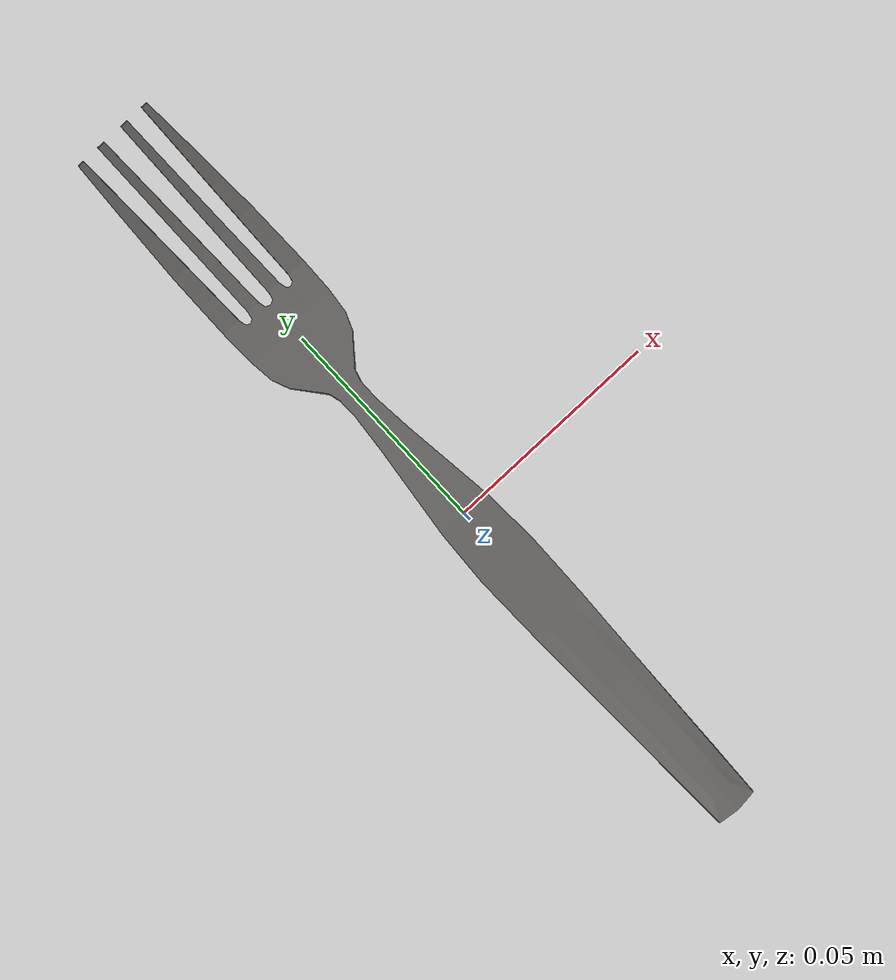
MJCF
<?xml version="1.0" encoding="utf-8"?>
<mujoco model="fork">
  <compiler angle="radian" meshdir="assets" texturedir="assets" autolimits="true"/>
  <asset>
    <mesh file="fork.obj"/>
    <mesh file="fork_collision_001.obj"/>
    <mesh file="fork_collision_002.obj"/>
    <texture type="2d" name="fork" file="fork.png"/>
    <material name="fork" texture="fork" specular="0.9" shininess="0.9" rgba="0.55 0.56 0.58 1"/>
  </asset>
  <default>
    <default class="fork">
      <default class="visual">
        <geom type="mesh" mass="0.032" contype="0" conaffinity="0" group="2" material="fork"/>
      </default>
      <default class="collision">
        <geom type="mesh" mass="0" group="3" solimp="0.98 0.99 0.001" solref="0.004 1"/>
      </default>
    </default>
  </default>
  <worldbody>
    <body name="fork" childclass="fork">
      <geom name="mesh" mesh="fork" class="visual"/>
      <geom name="collider_001" mesh="fork_collision_001" class="collision"/>
      <geom name="collider_002" mesh="fork_collision_002" class="collision"/>
    </body>
  </worldbody>
</mujoco>
